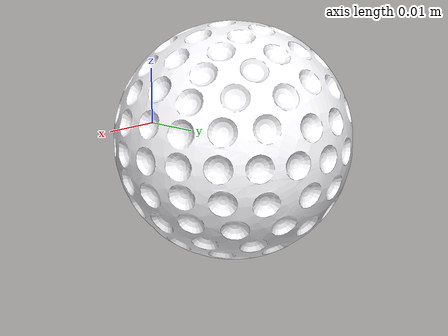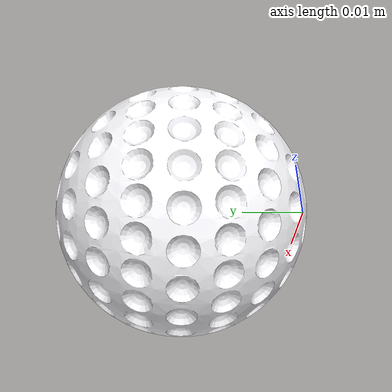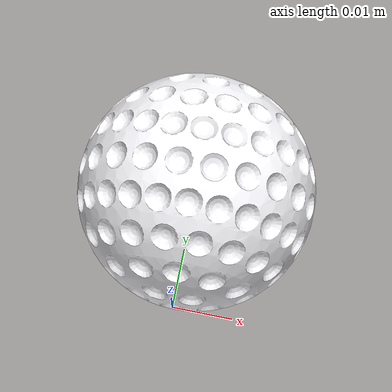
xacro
<?xml version="1.0" encoding="utf-8"?>

<robot name="task4_ball" xmlns:xacro="http://www.ros.org/wiki/xacro">

  <link name="base_link">
    <inertial>
      <origin
        xyz="0 0.02 0"
        rpy="0 0 0" />
      <mass
        value="0.073553" />
      <inertia
        ixx="1.1442E-05"
        ixy="0"
        ixz="0"
        iyy="1.1408E-05"
        iyz="0"
        izz="1.1442E-05" />
    </inertial>
    <visual>
      <origin
        xyz="0 0 0"
        rpy="0 0 0" />
      <geometry>
        <mesh
          filename="package://uwv_env/meshes/sauvc_pool/task4_ball_visual.STL" />
      </geometry>
      <material
        name="">
        <color
          rgba="0.98824 0.98431 1 1" />
      </material>
    </visual>
    <collision>
      <origin
        xyz="0 0 0"
        rpy="0 0 0" />
      <geometry>
        <mesh
          filename="package://uwv_env/meshes/sauvc_pool/task4_ball_collision.STL" />
      </geometry>
    </collision>
  </link>

</robot>
